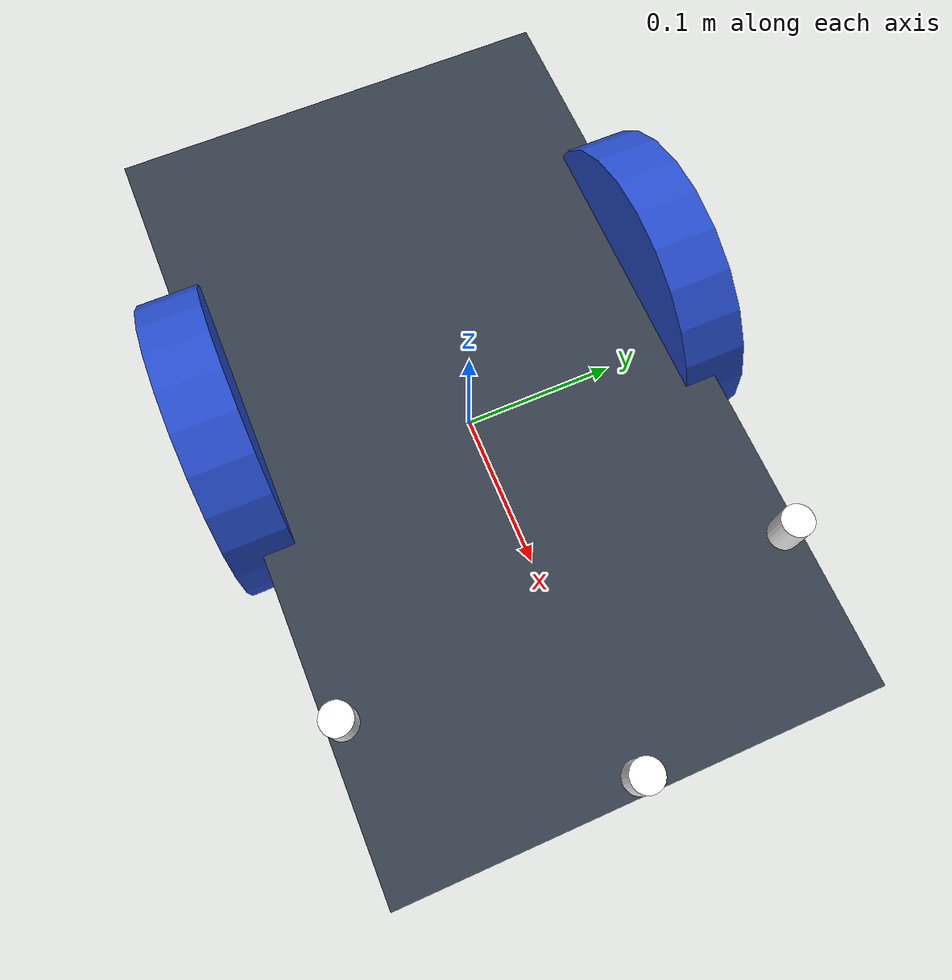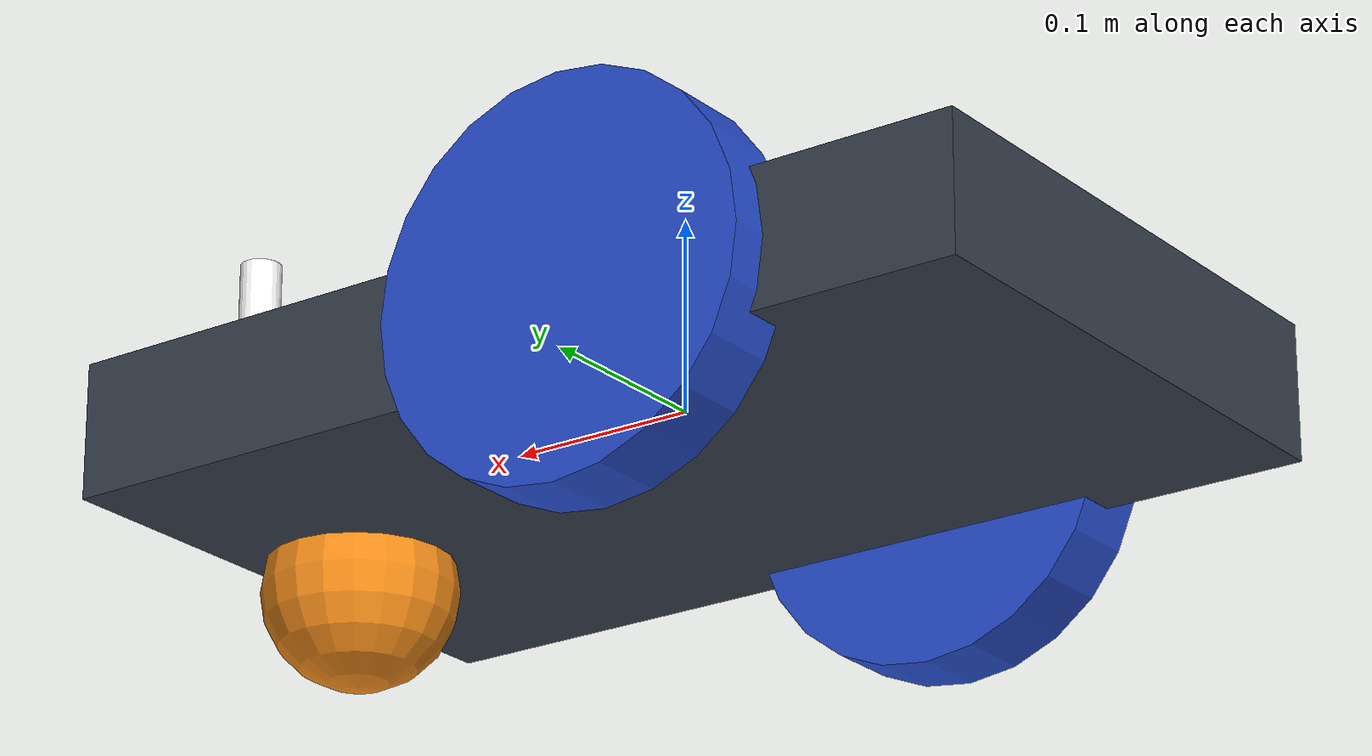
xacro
<?xml version="1.0" ?>
<robot name="m2wr" xmlns:xacro="http://www.ros.org/wiki/xacro">
 <xacro:include filename="$(find m2wr_description)/urdf/materials.xacro"/>
<xacro:include filename="$(find m2wr_description)/urdf/m2wr.gazebo"/>
<xacro:include filename="$(find m2wr_description)/urdf/macros.xacro"/>
  <link name="link_chassis">
    <!-- pose and inertial -->
    <pose>0 0 0.1 0 0 0</pose>
    <inertial>
      <mass value="5"/>
      <origin rpy="0 0 0" xyz="0 0 0.1"/>
      <inertia ixx="0.0395416666667" ixy="0" ixz="0" iyy="0.106208333333" iyz="0" izz="0.106208333333"/>
    </inertial>
    <!-- body -->
    <collision name="collision_chassis">
      <geometry>
        <box size="0.5 0.3 0.07"/>
      </geometry>
    </collision>
    <visual>
      <origin rpy="0 0 0" xyz="0 0 0"/>
      <geometry>
        <box size="0.5 0.3 0.07"/>
      </geometry>
      <material name="blue"/>
    </visual>
    <!-- caster front -->
    <collision name="caster_front_collision">
      <origin rpy=" 0 0 0" xyz="0.35 0 -0.05"/>
      <geometry>
        <sphere radius="0.05"/>
      </geometry>
      <surface>
        <friction>
          <ode>
            <mu>0</mu>
            <mu2>0</mu2>
            <slip1>1.0</slip1>
            <slip2>1.0</slip2>
          </ode>
        </friction>
      </surface>
    </collision>
    <visual name="caster_front_visual">
      <origin rpy=" 0 0 0" xyz="0.2 0 -0.05"/>
      <geometry>
        <sphere radius="0.05"/>
      </geometry>
    </visual>
  </link>

<xacro:ultrasonic_sensor name="ultrasonic_sensor_left"></xacro:ultrasonic_sensor>
<xacro:joint_sensor name="joint_sensor_left " child="ultrasonic_sensor_left" origin_xyz="0.15 -0.14 0.05" origin_rpy="0 0 0"></xacro:joint_sensor>
<xacro:ultrasonic_sensor name="ultrasonic_sensor_right"></xacro:ultrasonic_sensor>
<xacro:joint_sensor name="joint_sensor_right " child="ultrasonic_sensor_right" origin_xyz="0.15 0.14 0.05" origin_rpy="0 0 0"></xacro:joint_sensor>
<xacro:ultrasonic_sensor name="ultrasonic_sensor_front"></xacro:ultrasonic_sensor>
<xacro:joint_sensor name="joint_sensor_front " child="ultrasonic_sensor_front" origin_xyz="0.24 0 0.05" origin_rpy="0 0 0"></xacro:joint_sensor>

<xacro:link_wheel name="link_right_wheel"></xacro:link_wheel>
<xacro:joint_wheel name="joint_right_wheel " child="link_right_wheel" origin_xyz="-0.05 0.15 0"></xacro:joint_wheel>
<xacro:link_wheel name="link_left_wheel"></xacro:link_wheel>
<xacro:joint_wheel name="joint_left_wheel " child="link_left_wheel" origin_xyz="-0.05 -0.15 0"></xacro:joint_wheel>
</robot>

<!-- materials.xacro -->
<robot>
 <material name="black">
    <color rgba="0.0 0.0 0.0 1.0"/>
  </material>
  <material name="blue">
    <color rgba="0.203125 0.23828125 0.28515625 1.0"/>
  </material>
  <material name="green">
    <color rgba="0.0 0.8 0.0 1.0"/>
  </material>
  <material name="grey">
    <color rgba="0.2 0.2 0.2 1.0"/>
  </material>
  <material name="orange">
    <color rgba="1.0 0.423529411765 0.0392156862745 1.0"/>
  </material>
  <material name="brown">
    <color rgba="0.870588235294 0.811764705882 0.764705882353 1.0"/>
  </material>
  <material name="red">
    <color rgba="0.80078125 0.12890625 0.1328125 1.0"/>
  </material>
  <material name="white">
    <color rgba="1.0 1.0 1.0 1.0"/>
  </material>
</robot>

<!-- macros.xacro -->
<robot>
<macro name="link_wheel" params="name">
 <link name="${name}">
    <inertial>
      <mass value="0.2"/>
      <origin rpy="0 1.5707 1.5707" xyz="0 0 0"/>
      <inertia ixx="0.000526666666667" ixy="0" ixz="0" iyy="0.000526666666667" iyz="0" izz="0.001"/>
    </inertial>
    <collision name="${name}_collision">
      <origin rpy="0 1.5707 1.5707" xyz="0 0 0"/>
      <geometry>
        <cylinder length="0.04" radius="0.1"/>
      </geometry>
    </collision>
    <visual name="${name}_visual">
      <origin rpy="0 1.5707 1.5707" xyz="0 0 0"/>
      <geometry>
        <cylinder length="0.04" radius="0.1"/>
      </geometry>
    </visual>
  </link>
</macro>

<macro name="joint_wheel" params="name child origin_xyz">
  <joint name="${name}" type="continuous">
    <origin rpy="0 0 0" xyz="${origin_xyz}"/>
    <child link="${child}"/>
    <parent link="link_chassis"/>
    <axis rpy="0 0 0" xyz="0 1 0"/>
    <limit effort="10000" velocity="1000"/>
    <joint_properties damping="1.0" friction="1.0"/>
  </joint>

</macro>
<macro name="ultrasonic_sensor" params="name">
<link name="${name}">
    <inertial>
        <origin xyz="0 0 0" rpy="0 0 0" />
        <mass value="1" />
        <inertia  ixx="0.0001" ixy = "0" ixz = "0"
            iyy="0.0001" iyz = "0"
            izz="0.00005" />
    </inertial>

    <visual>
        <origin xyz="0 0 0" rpy="0 0 0" />
        <geometry>
<cylinder radius="0.01" length="0.03"/>
</geometry>
<material name="white"/>
</visual>
<collision>
<origin xyz="0 0 0" rpy="0 0 0" />
        <geometry>
<cylinder radius="0.01" length="0.03"/>
</geometry>
</collision>
</link>
</macro>

<macro name="joint_sensor" params="name child origin_xyz origin_rpy">
 <joint name="${name}" type="fixed">
    <origin xyz="${origin_xyz}" rpy="${origin_rpy}"/>
    <child link="${child}"/>
    <parent link="link_chassis"/>
</joint>
</macro>
</robot>
